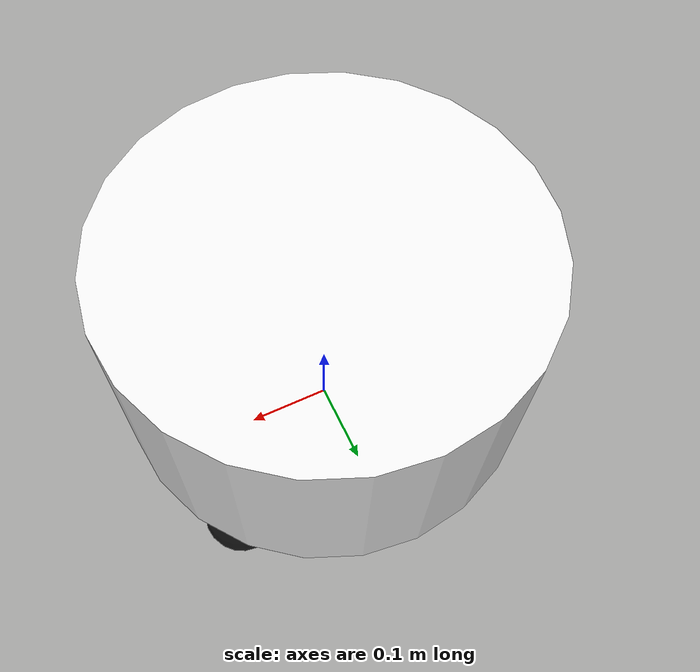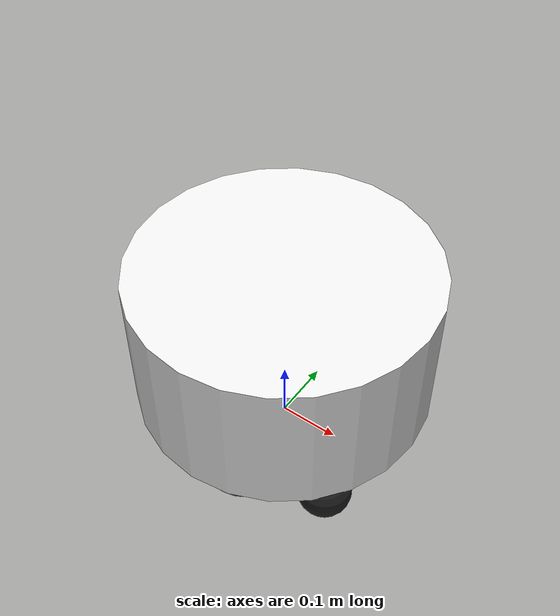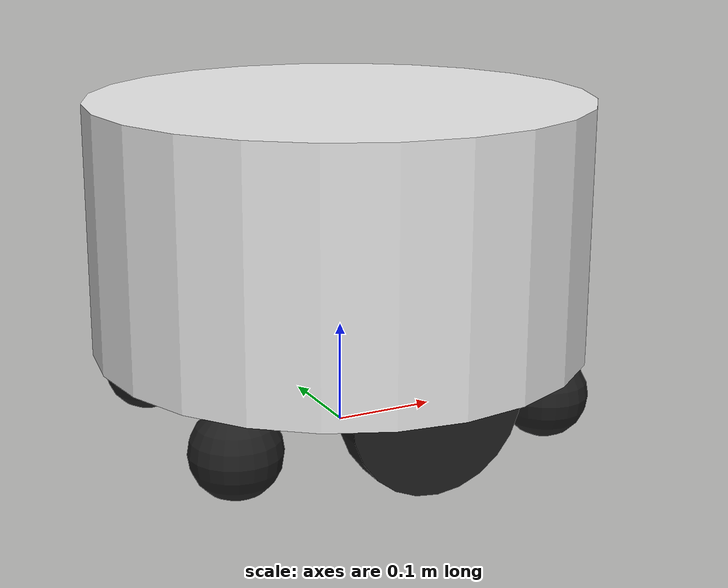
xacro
<?xml version="1.0"?>
<robot xmlns:xacro="http://www.ros.org/wiki/xacro">

  <xacro:property name="M_PI" value="3.1415926535897931" />

  <link name="base_footprint"/>

  <joint name="base_joint" type="fixed">
    <origin xyz="0 0 0.0648" rpy="0 0 0" />
    <parent link="base_footprint"/>
    <child link="base_link" />
  </joint>

  <link name="base_link">
    <visual>
      <geometry>
        <cylinder length="0.24" radius="0.24" />
      </geometry>
      <origin xyz="0 0 0.14" rpy="0 0 0"/>
      <material name="white"/>
    </visual>
    <collision name="base">
      <geometry>
        <cylinder length="0.24" radius="0.24"/>
      </geometry>
      <origin xyz="0.0 0 0.14" rpy="0 0 0"/>
    </collision>
    <inertial>
      <origin xyz="0.01 0 0"/>
      <mass value="2.4"/>
      <inertia ixx="0.019995" ixy="0.0" ixz="0.0"
               iyy="0.019995" iyz="0.0"
               izz="0.03675" />
    </inertial>
  </link>

  <joint name="wheel_left_joint" type="continuous">
    <parent link="base_link"/>
    <child link="wheel_left_link"/>
    <origin xyz="0.00 ${0.36/2} 0.02" rpy="${-M_PI/2} 0 0"/>
    <axis xyz="0 0 1"/>
  </joint>

  <link name="wheel_left_link">
    <visual>
      <geometry>
        <cylinder length="0.0276" radius="0.0848" />
      </geometry>
      <origin xyz="0 0 0" rpy="0 0 0"/>
      <material name="black"/>
    </visual>
    <collision>
      <geometry>
        <cylinder length="0.0276" radius="0.0848"/>
      </geometry>
      <origin rpy="0 0 0" xyz="0 0 0"/>
    </collision>
    <inertial>
      <mass value="0.01" />
      <origin xyz="0 0 0" />
      <inertia ixx="0.001" ixy="0.0" ixz="0.0"
               iyy="0.001" iyz="0.0"
               izz="0.001" />
    </inertial>
  </link>

  <joint name="wheel_right_joint" type="continuous">
    <parent link="base_link"/>
    <child link="wheel_right_link"/>
    <origin xyz="0.00 -${0.36/2} 0.02" rpy="${-M_PI/2} 0 0"/>
    <axis xyz="0 0 1"/>
  </joint>

  <link name="wheel_right_link">
    <visual>
      <geometry>
        <cylinder length="0.0276" radius="0.0848" />
      </geometry>
      <origin xyz="0 0 0" rpy="0 0 0"/>
      <material name="black"/>
    </visual>
    <collision>
      <geometry>
        <cylinder length="0.0276" radius="0.0848"/>
      </geometry>
      <origin rpy="0 0 0" xyz="0 0 0"/>
    </collision>
    <inertial>
      <mass value="0.01" />
      <origin xyz="0 0 0" />
      <inertia ixx="0.001" ixy="0.0" ixz="0.0"
               iyy="0.001" iyz="0.0"
               izz="0.001" />
    </inertial>
  </link>

<joint name="caster_front_left_joint" type="fixed">
    <parent link="base_link"/>
    <child link="caster_front_left_link"/>
    <origin xyz="0.16 0.12 -0.0224" rpy="0 0 0"/>
  </joint>

  <link name="caster_front_left_link">
    <visual>
      <geometry>
        <sphere radius="0.0424"/>
      </geometry>
      <material name="black"/>
    </visual>
    <collision>
      <geometry>
        <sphere radius="0.0424"/>
      </geometry>
    </collision>
    <inertial>
      <mass value="0.01" />
      <inertia ixx="0.000007" ixy="0.0" ixz="0.0" iyy="0.000007" iyz="0.0" izz="0.000007" />
    </inertial>
  </link>

  <joint name="caster_front_right_joint" type="fixed">
    <parent link="base_link"/>
    <child link="caster_front_right_link"/>
    <origin xyz="0.16 -0.12 -0.0224" rpy="0 0 0"/>
  </joint>

  <link name="caster_front_right_link">
    <visual>
      <geometry>
        <sphere radius="0.0424"/>
      </geometry>
      <material name="black"/>
    </visual>
    <collision>
      <geometry>
        <sphere radius="0.0424"/>
      </geometry>
    </collision>
    <inertial>
      <mass value="0.01" />
      <inertia ixx="0.000007" ixy="0.0" ixz="0.0" iyy="0.000007" iyz="0.0" izz="0.000007" />
    </inertial>
  </link>

  <joint name="caster_back_left_joint" type="fixed">
    <parent link="base_link"/>
    <child link="caster_back_left_link"/>
    <origin xyz="-0.16 0.12 -0.0224" rpy="0 0 0"/>
  </joint>

  <link name="caster_back_left_link">
    <visual>
      <geometry>
        <sphere radius="0.0424"/>
      </geometry>
      <material name="black"/>
    </visual>
    <collision>
      <geometry>
        <sphere radius="0.0424"/>
      </geometry>
    </collision>
    <inertial>
      <mass value="0.01" />
      <inertia ixx="0.000007" ixy="0.0" ixz="0.0" iyy="0.000007" iyz="0.0" izz="0.000007" />
    </inertial>
  </link>

  <joint name="caster_back_right_joint" type="fixed">
    <parent link="base_link"/>
    <child link="caster_back_right_link"/>
    <origin xyz="-0.16 -0.12 -0.0224" rpy="0 0 0"/>
  </joint>

  <link name="caster_back_right_link">
    <visual>
      <geometry>
        <sphere radius="0.0424"/>
      </geometry>
      <material name="black"/>
    </visual>
    <collision>
      <geometry>
        <sphere radius="0.0424"/>
      </geometry>
    </collision>
    <inertial>
      <mass value="0.01" />
      <inertia ixx="0.000007" ixy="0.0" ixz="0.0" iyy="0.000007" iyz="0.0" izz="0.000007" />
    </inertial>
  </link>

  <joint name="imu_joint" type="fixed">
    <parent link="base_link"/>
    <child link="imu_link"/>
    <origin xyz="0 0 0.03" rpy="0 0 0"/>
  </joint>

  <link name="imu_link">
    <visual>
      <origin xyz="0 0 0.0" rpy="0 0 0"/>
      <geometry>
        <box size="0.03 0.02 0.02"/>
      </geometry>
      <material name="black"/>
    </visual>
  </link>

  <gazebo reference="wheel_left_link"><mu1>100.0</mu1><mu2>100.0</mu2></gazebo>
  <gazebo reference="wheel_right_link"><mu1>100.0</mu1><mu2>100.0</mu2></gazebo>
  <gazebo reference="caster_front_left_link"><mu1>0.0</mu1><mu2>0.0</mu2></gazebo>
  <gazebo reference="caster_front_right_link"><mu1>0.0</mu1><mu2>0.0</mu2></gazebo>
  <gazebo reference="caster_back_left_link"><mu1>0.0</mu1><mu2>0.0</mu2></gazebo>
  <gazebo reference="caster_back_right_link"><mu1>0.0</mu1><mu2>0.0</mu2></gazebo>
</robot>
